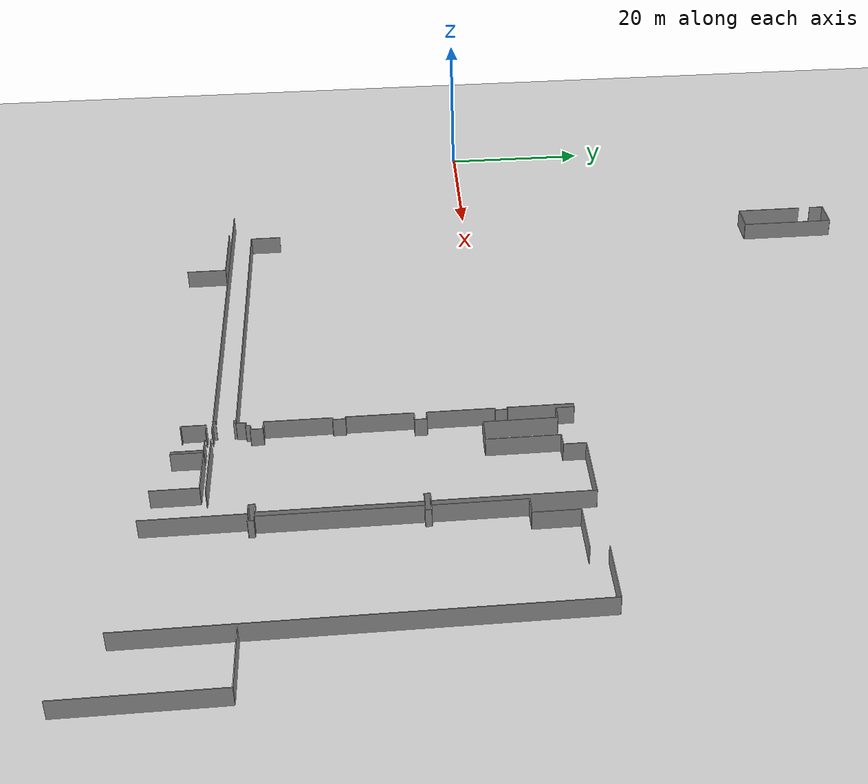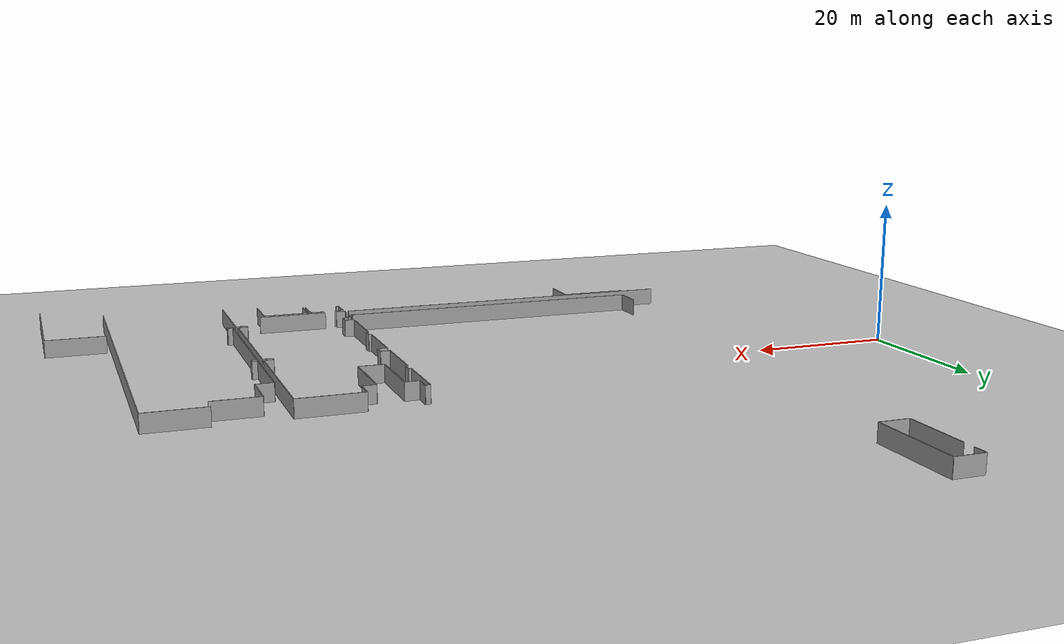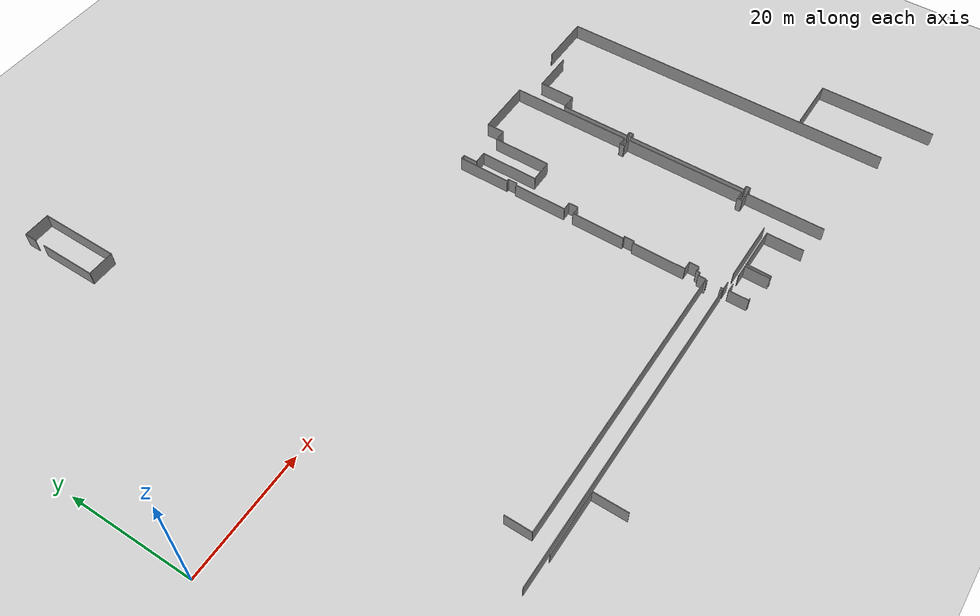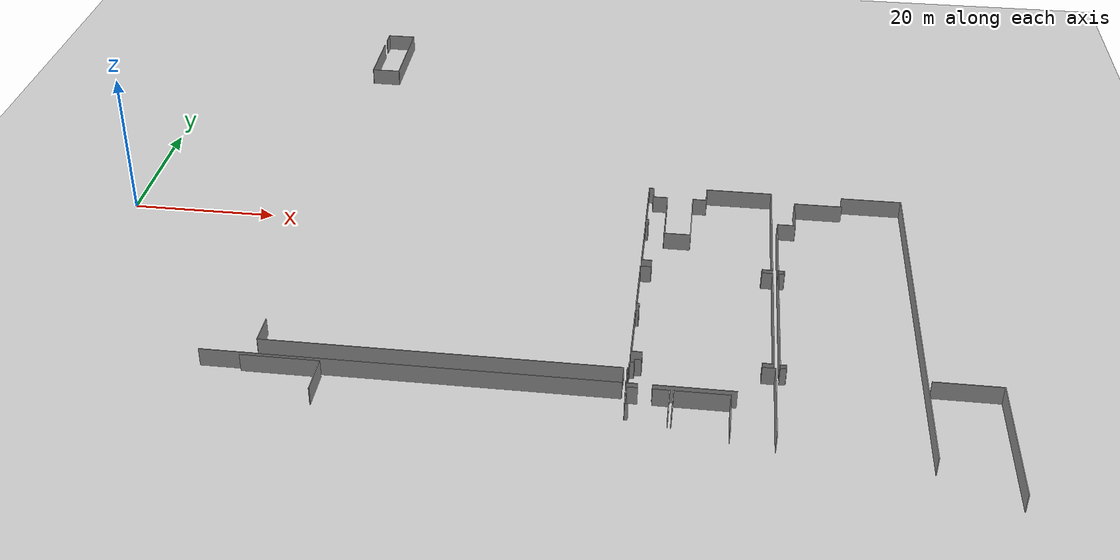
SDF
<sdf version="1.6">
 <world name="default">
  <model name="ground_plane">
   <static>1</static>
   <link name="link">
    <collision name="collision">
     <geometry><plane><normal>0 0 1</normal><size>100 100</size></plane></geometry>
     <surface><friction><ode><mu>100</mu><mu2>50</mu2></ode></friction></surface>
    </collision>
    <visual name="visual">
     <cast_shadows>0</cast_shadows>
     <geometry><plane><normal>0 0 1</normal><size>100 100</size></plane></geometry>
     <material>
      <script><uri>file://media/materials/scripts/gazebo.material</uri><name>Gazebo/Grey</name></script>
     </material>
    </visual>
   </link>
  </model>
  <model name="0510035518_A_40_1_101">
   <static>1</static>
   <link name="Wall_85">
    <collision name="Wall_85_Collision">
     <geometry><box><size>9.18767862814 0.1 2.5</size></box></geometry>
     <pose>4.59383931407 0 1.25 0 0 0</pose>
    </collision>
    <visual name="Wall_85_Visual">
     <pose>4.59383931407 0 1.25 0 0 0</pose>
     <geometry><box><size>9.18767862814 0.1 2.5</size></box></geometry>
     <material>
      <script><uri>file://media/materials/scripts/gazebo.material</uri><name>Gazebo/Grey</name></script>
      <ambient>1 1 1 1</ambient>
     </material>
    </visual>
    <pose>142.437853287 -27.0315655764 0 0 0 1.57079632679</pose>
   </link>
   <link name="Wall_86">
    <collision name="Wall_86_Collision">
     <geometry><box><size>1.98971101937 0.1 2.5</size></box></geometry>
     <pose>0.994855509686 0 1.25 0 0 0</pose>
    </collision>
    <visual name="Wall_86_Visual">
     <pose>0.994855509686 0 1.25 0 0 0</pose>
     <geometry><box><size>1.98971101937 0.1 2.5</size></box></geometry>
     <material>
      <script><uri>file://media/materials/scripts/gazebo.material</uri><name>Gazebo/Grey</name></script>
      <ambient>1 1 1 1</ambient>
     </material>
    </visual>
    <pose>142.437853287 -16.1920609717 0 0 0 1.57079632679</pose>
   </link>
   <link name="Wall_87">
    <collision name="Wall_87_Collision">
     <geometry><box><size>4.20679580819 0.1 2.5</size></box></geometry>
     <pose>2.1033979041 0 1.25 0 0 0</pose>
    </collision>
    <visual name="Wall_87_Visual">
     <pose>2.1033979041 0 1.25 0 0 0</pose>
     <geometry><box><size>4.20679580819 0.1 2.5</size></box></geometry>
     <material>
      <script><uri>file://media/materials/scripts/gazebo.material</uri><name>Gazebo/Grey</name></script>
      <ambient>1 1 1 1</ambient>
     </material>
    </visual>
    <pose>142.437853287 -14.2023499524 0 0 0 0.0</pose>
   </link>
   <link name="Wall_88">
    <collision name="Wall_88_Collision">
     <geometry><box><size>12.8467449984 0.1 2.5</size></box></geometry>
     <pose>6.42337249921 0 1.25 0 0 0</pose>
    </collision>
    <visual name="Wall_88_Visual">
     <pose>6.42337249921 0 1.25 0 0 0</pose>
     <geometry><box><size>12.8467449984 0.1 2.5</size></box></geometry>
     <material>
      <script><uri>file://media/materials/scripts/gazebo.material</uri><name>Gazebo/Grey</name></script>
      <ambient>1 1 1 1</ambient>
     </material>
    </visual>
    <pose>146.644649095 -14.2023499524 0 0 0 -1.57079632679</pose>
   </link>
   <link name="Wall_89">
    <collision name="Wall_89_Collision">
     <geometry><box><size>4.20683232977 0.1 2.5</size></box></geometry>
     <pose>2.10341616488 0 1.25 0 0 0</pose>
    </collision>
    <visual name="Wall_89_Visual">
     <pose>2.10341616488 0 1.25 0 0 0</pose>
     <geometry><box><size>4.20683232977 0.1 2.5</size></box></geometry>
     <material>
      <script><uri>file://media/materials/scripts/gazebo.material</uri><name>Gazebo/Grey</name></script>
      <ambient>1 1 1 1</ambient>
     </material>
    </visual>
    <pose>146.644649095 -27.0490949508 0 0 0 3.13742575941</pose>
   </link>
   <link name="Wall_271">
    <collision name="Wall_271_Collision">
     <geometry><box><size>9.96532232455 0.1 2.5</size></box></geometry>
     <pose>4.98266116227 0 1.25 0 0 0</pose>
    </collision>
    <visual name="Wall_271_Visual">
     <pose>4.98266116227 0 1.25 0 0 0</pose>
     <geometry><box><size>9.96532232455 0.1 2.5</size></box></geometry>
     <material>
      <script><uri>file://media/materials/scripts/gazebo.material</uri><name>Gazebo/Grey</name></script>
      <ambient>1 1 1 1</ambient>
     </material>
    </visual>
    <pose>142.362654811 -103.447951731 0 0 0 0.0</pose>
   </link>
   <link name="Wall_272">
    <collision name="Wall_272_Collision">
     <geometry><box><size>5.31140044459 0.1 2.5</size></box></geometry>
     <pose>2.65570022229 0 1.25 0 0 0</pose>
    </collision>
    <visual name="Wall_272_Visual">
     <pose>2.65570022229 0 1.25 0 0 0</pose>
     <geometry><box><size>5.31140044459 0.1 2.5</size></box></geometry>
     <material>
      <script><uri>file://media/materials/scripts/gazebo.material</uri><name>Gazebo/Grey</name></script>
      <ambient>1 1 1 1</ambient>
     </material>
    </visual>
    <pose>152.327977136 -103.447951731 0 0 0 -1.57079632679</pose>
   </link>
   <link name="Wall_325">
    <collision name="Wall_325_Collision">
     <geometry><box><size>0.418672594474 0.1 2.5</size></box></geometry>
     <pose>0.209336297237 0 1.25 0 0 0</pose>
    </collision>
    <visual name="Wall_325_Visual">
     <pose>0.209336297237 0 1.25 0 0 0</pose>
     <geometry><box><size>0.418672594474 0.1 2.5</size></box></geometry>
     <material>
      <script><uri>file://media/materials/scripts/gazebo.material</uri><name>Gazebo/Grey</name></script>
      <ambient>1 1 1 1</ambient>
     </material>
    </visual>
    <pose>189.804509368 -106.838996507 0 0 0 3.14159265359</pose>
   </link>
   <link name="Wall_326">
    <collision name="Wall_326_Collision">
     <geometry><box><size>3.08796443315 0.1 2.5</size></box></geometry>
     <pose>1.54398221658 0 1.25 0 0 0</pose>
    </collision>
    <visual name="Wall_326_Visual">
     <pose>1.54398221658 0 1.25 0 0 0</pose>
     <geometry><box><size>3.08796443315 0.1 2.5</size></box></geometry>
     <material>
      <script><uri>file://media/materials/scripts/gazebo.material</uri><name>Gazebo/Grey</name></script>
      <ambient>1 1 1 1</ambient>
     </material>
    </visual>
    <pose>189.385836774 -106.838996507 0 0 0 1.57079632679</pose>
   </link>
   <link name="Wall_327">
    <collision name="Wall_327_Collision">
     <geometry><box><size>1.32511908542 0.1 2.5</size></box></geometry>
     <pose>0.662559542712 0 1.25 0 0 0</pose>
    </collision>
    <visual name="Wall_327_Visual">
     <pose>0.662559542712 0 1.25 0 0 0</pose>
     <geometry><box><size>1.32511908542 0.1 2.5</size></box></geometry>
     <material>
      <script><uri>file://media/materials/scripts/gazebo.material</uri><name>Gazebo/Grey</name></script>
      <ambient>1 1 1 1</ambient>
     </material>
    </visual>
    <pose>189.385836774 -103.751032074 0 0 0 0.0</pose>
   </link>
   <link name="Wall_328">
    <collision name="Wall_328_Collision">
     <geometry><box><size>2.01333756748 0.1 2.5</size></box></geometry>
     <pose>1.00666878374 0 1.25 0 0 0</pose>
    </collision>
    <visual name="Wall_328_Visual">
     <pose>1.00666878374 0 1.25 0 0 0</pose>
     <geometry><box><size>2.01333756748 0.1 2.5</size></box></geometry>
     <material>
      <script><uri>file://media/materials/scripts/gazebo.material</uri><name>Gazebo/Grey</name></script>
      <ambient>1 1 1 1</ambient>
     </material>
    </visual>
    <pose>192.436710067 -103.751032074 0 0 0 0.0</pose>
   </link>
   <link name="Wall_329">
    <collision name="Wall_329_Collision">
     <geometry><box><size>3.90346141632 0.1 2.5</size></box></geometry>
     <pose>1.95173070816 0 1.25 0 0 0</pose>
    </collision>
    <visual name="Wall_329_Visual">
     <pose>1.95173070816 0 1.25 0 0 0</pose>
     <geometry><box><size>3.90346141632 0.1 2.5</size></box></geometry>
     <material>
      <script><uri>file://media/materials/scripts/gazebo.material</uri><name>Gazebo/Grey</name></script>
      <ambient>1 1 1 1</ambient>
     </material>
    </visual>
    <pose>194.450047634 -103.751032074 0 0 0 -1.57079632679</pose>
   </link>
   <link name="Wall_335">
    <collision name="Wall_335_Collision">
     <geometry><box><size>6.73077167355 0.1 2.5</size></box></geometry>
     <pose>3.36538583677 0 1.25 0 0 0</pose>
    </collision>
    <visual name="Wall_335_Visual">
     <pose>3.36538583677 0 1.25 0 0 0</pose>
     <geometry><box><size>6.73077167355 0.1 2.5</size></box></geometry>
     <material>
      <script><uri>file://media/materials/scripts/gazebo.material</uri><name>Gazebo/Grey</name></script>
      <ambient>1 1 1 1</ambient>
     </material>
    </visual>
    <pose>194.906827564 -103.747475389 0 0 0 0.0</pose>
   </link>
   <link name="Wall_336">
    <collision name="Wall_336_Collision">
     <geometry><box><size>5.81695776437 0.1 2.5</size></box></geometry>
     <pose>2.90847888218 0 1.25 0 0 0</pose>
    </collision>
    <visual name="Wall_336_Visual">
     <pose>2.90847888218 0 1.25 0 0 0</pose>
     <geometry><box><size>5.81695776437 0.1 2.5</size></box></geometry>
     <material>
      <script><uri>file://media/materials/scripts/gazebo.material</uri><name>Gazebo/Grey</name></script>
      <ambient>1 1 1 1</ambient>
     </material>
    </visual>
    <pose>201.637599238 -103.747475389 0 0 0 -1.57079632679</pose>
   </link>
   <link name="Wall_342">
    <collision name="Wall_342_Collision">
     <geometry><box><size>3.96048375785 0.1 2.5</size></box></geometry>
     <pose>1.98024187893 0 1.25 0 0 0</pose>
    </collision>
    <visual name="Wall_342_Visual">
     <pose>1.98024187893 0 1.25 0 0 0</pose>
     <geometry><box><size>3.96048375785 0.1 2.5</size></box></geometry>
     <material>
      <script><uri>file://media/materials/scripts/gazebo.material</uri><name>Gazebo/Grey</name></script>
      <ambient>1 1 1 1</ambient>
     </material>
    </visual>
    <pose>194.876595745 -107.70784376 0 0 0 1.56316288728</pose>
   </link>
   <link name="Wall_353">
    <collision name="Wall_353_Collision">
     <geometry><box><size>4.1493807558 0.1 2.5</size></box></geometry>
     <pose>2.0746903779 0 1.25 0 0 0</pose>
    </collision>
    <visual name="Wall_353_Visual">
     <pose>2.0746903779 0 1.25 0 0 0</pose>
     <geometry><box><size>4.1493807558 0.1 2.5</size></box></geometry>
     <material>
      <script><uri>file://media/materials/scripts/gazebo.material</uri><name>Gazebo/Grey</name></script>
      <ambient>1 1 1 1</ambient>
     </material>
    </visual>
    <pose>143.656017783 -96.0241346459 0 0 0 -1.57079632679</pose>
   </link>
   <link name="Wall_354">
    <collision name="Wall_354_Collision">
     <geometry><box><size>45.1414417275 0.1 2.5</size></box></geometry>
     <pose>22.5707208638 0 1.25 0 0 0</pose>
    </collision>
    <visual name="Wall_354_Visual">
     <pose>22.5707208638 0 1.25 0 0 0</pose>
     <geometry><box><size>45.1414417275 0.1 2.5</size></box></geometry>
     <material>
      <script><uri>file://media/materials/scripts/gazebo.material</uri><name>Gazebo/Grey</name></script>
      <ambient>1 1 1 1</ambient>
     </material>
    </visual>
    <pose>143.656017783 -100.173515402 0 0 0 0.0</pose>
   </link>
   <link name="Wall_355">
    <collision name="Wall_355_Collision">
     <geometry><box><size>0.345760558908 0.1 2.5</size></box></geometry>
     <pose>0.172880279454 0 1.25 0 0 0</pose>
    </collision>
    <visual name="Wall_355_Visual">
     <pose>0.172880279454 0 1.25 0 0 0</pose>
     <geometry><box><size>0.345760558908 0.1 2.5</size></box></geometry>
     <material>
      <script><uri>file://media/materials/scripts/gazebo.material</uri><name>Gazebo/Grey</name></script>
      <ambient>1 1 1 1</ambient>
     </material>
    </visual>
    <pose>188.797459511 -100.173515402 0 0 0 -1.57079632679</pose>
   </link>
   <link name="Wall_356">
    <collision name="Wall_356_Collision">
     <geometry><box><size>0.360749444268 0.1 2.5</size></box></geometry>
     <pose>0.180374722134 0 1.25 0 0 0</pose>
    </collision>
    <visual name="Wall_356_Visual">
     <pose>0.180374722134 0 1.25 0 0 0</pose>
     <geometry><box><size>0.360749444268 0.1 2.5</size></box></geometry>
     <material>
      <script><uri>file://media/materials/scripts/gazebo.material</uri><name>Gazebo/Grey</name></script>
      <ambient>1 1 1 1</ambient>
     </material>
    </visual>
    <pose>188.797459511 -102.626611623 0 0 0 -1.57079632679</pose>
   </link>
   <link name="Wall_357">
    <collision name="Wall_357_Collision">
     <geometry><box><size>51.6933629724 0.1 2.5</size></box></geometry>
     <pose>25.8466814862 0 1.25 0 0 0</pose>
    </collision>
    <visual name="Wall_357_Visual">
     <pose>25.8466814862 0 1.25 0 0 0</pose>
     <geometry><box><size>51.6933629724 0.1 2.5</size></box></geometry>
     <material>
      <script><uri>file://media/materials/scripts/gazebo.material</uri><name>Gazebo/Grey</name></script>
      <ambient>1 1 1 1</ambient>
     </material>
    </visual>
    <pose>188.797459511 -102.987361067 0 0 0 3.14159265359</pose>
   </link>
   <link name="Wall_364">
    <collision name="Wall_364_Collision">
     <geometry><box><size>8.46186090822 0.1 2.5</size></box></geometry>
     <pose>4.23093045411 0 1.25 0 0 0</pose>
    </collision>
    <visual name="Wall_364_Visual">
     <pose>4.23093045411 0 1.25 0 0 0</pose>
     <geometry><box><size>8.46186090822 0.1 2.5</size></box></geometry>
     <material>
      <script><uri>file://media/materials/scripts/gazebo.material</uri><name>Gazebo/Grey</name></script>
      <ambient>1 1 1 1</ambient>
     </material>
    </visual>
    <pose>189.39828517 -96.8373451889 0 0 0 1.57079632679</pose>
   </link>
   <link name="Wall_365">
    <collision name="Wall_365_Collision">
     <geometry><box><size>0.382089552239 0.1 2.5</size></box></geometry>
     <pose>0.191044776119 0 1.25 0 0 0</pose>
    </collision>
    <visual name="Wall_365_Visual">
     <pose>0.191044776119 0 1.25 0 0 0</pose>
     <geometry><box><size>0.382089552239 0.1 2.5</size></box></geometry>
     <material>
      <script><uri>file://media/materials/scripts/gazebo.material</uri><name>Gazebo/Grey</name></script>
      <ambient>1 1 1 1</ambient>
     </material>
    </visual>
    <pose>189.39828517 -88.3754842807 0 0 0 0.0</pose>
   </link>
   <link name="Wall_366">
    <collision name="Wall_366_Collision">
     <geometry><box><size>1.56341695776 0.1 2.5</size></box></geometry>
     <pose>0.781708478882 0 1.25 0 0 0</pose>
    </collision>
    <visual name="Wall_366_Visual">
     <pose>0.781708478882 0 1.25 0 0 0</pose>
     <geometry><box><size>1.56341695776 0.1 2.5</size></box></geometry>
     <material>
      <script><uri>file://media/materials/scripts/gazebo.material</uri><name>Gazebo/Grey</name></script>
      <ambient>1 1 1 1</ambient>
     </material>
    </visual>
    <pose>189.780374722 -88.3754842807 0 0 0 1.57079632679</pose>
   </link>
   <link name="Wall_367">
    <collision name="Wall_367_Collision">
     <geometry><box><size>0.390981263893 0.1 2.5</size></box></geometry>
     <pose>0.195490631947 0 1.25 0 0 0</pose>
    </collision>
    <visual name="Wall_367_Visual">
     <pose>0.195490631947 0 1.25 0 0 0</pose>
     <geometry><box><size>0.390981263893 0.1 2.5</size></box></geometry>
     <material>
      <script><uri>file://media/materials/scripts/gazebo.material</uri><name>Gazebo/Grey</name></script>
      <ambient>1 1 1 1</ambient>
     </material>
    </visual>
    <pose>189.780374722 -86.812067323 0 0 0 3.14159265359</pose>
   </link>
   <link name="Wall_368">
    <collision name="Wall_368_Collision">
     <geometry><box><size>8.4486503652 0.1 2.5</size></box></geometry>
     <pose>4.2243251826 0 1.25 0 0 0</pose>
    </collision>
    <visual name="Wall_368_Visual">
     <pose>4.2243251826 0 1.25 0 0 0</pose>
     <geometry><box><size>8.4486503652 0.1 2.5</size></box></geometry>
     <material>
      <script><uri>file://media/materials/scripts/gazebo.material</uri><name>Gazebo/Grey</name></script>
      <ambient>1 1 1 1</ambient>
     </material>
    </visual>
    <pose>189.389393458 -86.812067323 0 0 0 1.57079632679</pose>
   </link>
   <link name="Wall_369">
    <collision name="Wall_369_Collision">
     <geometry><box><size>1.3868529692 0.1 2.5</size></box></geometry>
     <pose>0.693426484598 0 1.25 0 0 0</pose>
    </collision>
    <visual name="Wall_369_Visual">
     <pose>0.693426484598 0 1.25 0 0 0</pose>
     <geometry><box><size>1.3868529692 0.1 2.5</size></box></geometry>
     <material>
      <script><uri>file://media/materials/scripts/gazebo.material</uri><name>Gazebo/Grey</name></script>
      <ambient>1 1 1 1</ambient>
     </material>
    </visual>
    <pose>189.389393458 -78.3634169578 0 0 0 0.0</pose>
   </link>
   <link name="Wall_370">
    <collision name="Wall_370_Collision">
     <geometry><box><size>1.52251508415 0.1 2.5</size></box></geometry>
     <pose>0.761257542077 0 1.25 0 0 0</pose>
    </collision>
    <visual name="Wall_370_Visual">
     <pose>0.761257542077 0 1.25 0 0 0</pose>
     <geometry><box><size>1.52251508415 0.1 2.5</size></box></geometry>
     <material>
      <script><uri>file://media/materials/scripts/gazebo.material</uri><name>Gazebo/Grey</name></script>
      <ambient>1 1 1 1</ambient>
     </material>
    </visual>
    <pose>190.776246427 -78.3634169578 0 0 0 1.57079632679</pose>
   </link>
   <link name="Wall_371">
    <collision name="Wall_371_Collision">
     <geometry><box><size>1.35890758971 0.1 2.5</size></box></geometry>
     <pose>0.679453794856 0 1.25 0 0 0</pose>
    </collision>
    <visual name="Wall_371_Visual">
     <pose>0.679453794856 0 1.25 0 0 0</pose>
     <geometry><box><size>1.35890758971 0.1 2.5</size></box></geometry>
     <material>
      <script><uri>file://media/materials/scripts/gazebo.material</uri><name>Gazebo/Grey</name></script>
      <ambient>1 1 1 1</ambient>
     </material>
    </visual>
    <pose>190.776246427 -76.8409018736 0 0 0 3.14159265359</pose>
   </link>
   <link name="Wall_372">
    <collision name="Wall_372_Collision">
     <geometry><box><size>8.49869799936 0.1 2.5</size></box></geometry>
     <pose>4.24934899968 0 1.25 0 0 0</pose>
    </collision>
    <visual name="Wall_372_Visual">
     <pose>4.24934899968 0 1.25 0 0 0</pose>
     <geometry><box><size>8.49869799936 0.1 2.5</size></box></geometry>
     <material>
      <script><uri>file://media/materials/scripts/gazebo.material</uri><name>Gazebo/Grey</name></script>
      <ambient>1 1 1 1</ambient>
     </material>
    </visual>
    <pose>189.417338838 -76.8409018736 0 0 0 1.57079632679</pose>
   </link>
   <link name="Wall_373">
    <collision name="Wall_373_Collision">
     <geometry><box><size>0.353636074944 0.1 2.5</size></box></geometry>
     <pose>0.176818037472 0 1.25 0 0 0</pose>
    </collision>
    <visual name="Wall_373_Visual">
     <pose>0.176818037472 0 1.25 0 0 0</pose>
     <geometry><box><size>0.353636074944 0.1 2.5</size></box></geometry>
     <material>
      <script><uri>file://media/materials/scripts/gazebo.material</uri><name>Gazebo/Grey</name></script>
      <ambient>1 1 1 1</ambient>
     </material>
    </visual>
    <pose>189.417338838 -68.3422038742 0 0 0 0.0</pose>
   </link>
   <link name="Wall_374">
    <collision name="Wall_374_Collision">
     <geometry><box><size>1.50498570975 0.1 2.5</size></box></geometry>
     <pose>0.752492854875 0 1.25 0 0 0</pose>
    </collision>
    <visual name="Wall_374_Visual">
     <pose>0.752492854875 0 1.25 0 0 0</pose>
     <geometry><box><size>1.50498570975 0.1 2.5</size></box></geometry>
     <material>
      <script><uri>file://media/materials/scripts/gazebo.material</uri><name>Gazebo/Grey</name></script>
      <ambient>1 1 1 1</ambient>
     </material>
    </visual>
    <pose>189.770974913 -68.3422038742 0 0 0 1.57079632679</pose>
   </link>
   <link name="Wall_375">
    <collision name="Wall_375_Collision">
     <geometry><box><size>0.378786916481 0.1 2.5</size></box></geometry>
     <pose>0.189393458241 0 1.25 0 0 0</pose>
    </collision>
    <visual name="Wall_375_Visual">
     <pose>0.189393458241 0 1.25 0 0 0</pose>
     <geometry><box><size>0.378786916481 0.1 2.5</size></box></geometry>
     <material>
      <script><uri>file://media/materials/scripts/gazebo.material</uri><name>Gazebo/Grey</name></script>
      <ambient>1 1 1 1</ambient>
     </material>
    </visual>
    <pose>189.770974913 -66.8372181645 0 0 0 3.14159265359</pose>
   </link>
   <link name="Wall_376">
    <collision name="Wall_376_Collision">
     <geometry><box><size>8.30181009844 0.1 2.5</size></box></geometry>
     <pose>4.15090504922 0 1.25 0 0 0</pose>
    </collision>
    <visual name="Wall_376_Visual">
     <pose>4.15090504922 0 1.25 0 0 0</pose>
     <geometry><box><size>8.30181009844 0.1 2.5</size></box></geometry>
     <material>
      <script><uri>file://media/materials/scripts/gazebo.material</uri><name>Gazebo/Grey</name></script>
      <ambient>1 1 1 1</ambient>
     </material>
    </visual>
    <pose>189.392187996 -66.8372181645 0 0 0 1.57079632679</pose>
   </link>
   <link name="Wall_377">
    <collision name="Wall_377_Collision">
     <geometry><box><size>0.678056525881 0.1 2.5</size></box></geometry>
     <pose>0.339028262941 0 1.25 0 0 0</pose>
    </collision>
    <visual name="Wall_377_Visual">
     <pose>0.339028262941 0 1.25 0 0 0</pose>
     <geometry><box><size>0.678056525881 0.1 2.5</size></box></geometry>
     <material>
      <script><uri>file://media/materials/scripts/gazebo.material</uri><name>Gazebo/Grey</name></script>
      <ambient>1 1 1 1</ambient>
     </material>
    </visual>
    <pose>189.392187996 -58.5354080661 0 0 0 0.0</pose>
   </link>
   <link name="Wall_378">
    <collision name="Wall_378_Collision">
     <geometry><box><size>2.27958081931 0.1 2.5</size></box></geometry>
     <pose>1.13979040965 0 1.25 0 0 0</pose>
    </collision>
    <visual name="Wall_378_Visual">
     <pose>1.13979040965 0 1.25 0 0 0</pose>
     <geometry><box><size>2.27958081931 0.1 2.5</size></box></geometry>
     <material>
      <script><uri>file://media/materials/scripts/gazebo.material</uri><name>Gazebo/Grey</name></script>
      <ambient>1 1 1 1</ambient>
     </material>
    </visual>
    <pose>190.070244522 -58.5354080661 0 0 0 -1.57079632679</pose>
   </link>
   <link name="Wall_379">
    <collision name="Wall_379_Collision">
     <geometry><box><size>2.00317561131 0.1 2.5</size></box></geometry>
     <pose>1.00158780565 0 1.25 0 0 0</pose>
    </collision>
    <visual name="Wall_379_Visual">
     <pose>1.00158780565 0 1.25 0 0 0</pose>
     <geometry><box><size>2.00317561131 0.1 2.5</size></box></geometry>
     <material>
      <script><uri>file://media/materials/scripts/gazebo.material</uri><name>Gazebo/Grey</name></script>
      <ambient>1 1 1 1</ambient>
     </material>
    </visual>
    <pose>190.070244522 -60.8149888854 0 0 0 0.0</pose>
   </link>
   <link name="Wall_380">
    <collision name="Wall_380_Collision">
     <geometry><box><size>9.22908859956 0.1 2.5</size></box></geometry>
     <pose>4.61454429978 0 1.25 0 0 0</pose>
    </collision>
    <visual name="Wall_380_Visual">
     <pose>4.61454429978 0 1.25 0 0 0</pose>
     <geometry><box><size>9.22908859956 0.1 2.5</size></box></geometry>
     <material>
      <script><uri>file://media/materials/scripts/gazebo.material</uri><name>Gazebo/Grey</name></script>
      <ambient>1 1 1 1</ambient>
     </material>
    </visual>
    <pose>192.073420133 -60.8149888854 0 0 0 -1.57079632679</pose>
   </link>
   <link name="Wall_381">
    <collision name="Wall_381_Collision">
     <geometry><box><size>3.57014925373 0.1 2.5</size></box></geometry>
     <pose>1.78507462687 0 1.25 0 0 0</pose>
    </collision>
    <visual name="Wall_381_Visual">
     <pose>1.78507462687 0 1.25 0 0 0</pose>
     <geometry><box><size>3.57014925373 0.1 2.5</size></box></geometry>
     <material>
      <script><uri>file://media/materials/scripts/gazebo.material</uri><name>Gazebo/Grey</name></script>
      <ambient>1 1 1 1</ambient>
     </material>
    </visual>
    <pose>192.073420133 -70.0440774849 0 0 0 0.0</pose>
   </link>
   <link name="Wall_382">
    <collision name="Wall_382_Collision">
     <geometry><box><size>9.23518577326 0.1 2.5</size></box></geometry>
     <pose>4.61759288663 0 1.25 0 0 0</pose>
    </collision>
    <visual name="Wall_382_Visual">
     <pose>4.61759288663 0 1.25 0 0 0</pose>
     <geometry><box><size>9.23518577326 0.1 2.5</size></box></geometry>
     <material>
      <script><uri>file://media/materials/scripts/gazebo.material</uri><name>Gazebo/Grey</name></script>
      <ambient>1 1 1 1</ambient>
     </material>
    </visual>
    <pose>195.643569387 -70.0440774849 0 0 0 1.57079632679</pose>
   </link>
   <link name="Wall_383">
    <collision name="Wall_383_Collision">
     <geometry><box><size>1.90181009844 0.1 2.5</size></box></geometry>
     <pose>0.950905049222 0 1.25 0 0 0</pose>
    </collision>
    <visual name="Wall_383_Visual">
     <pose>0.950905049222 0 1.25 0 0 0</pose>
     <geometry><box><size>1.90181009844 0.1 2.5</size></box></geometry>
     <material>
      <script><uri>file://media/materials/scripts/gazebo.material</uri><name>Gazebo/Grey</name></script>
      <ambient>1 1 1 1</ambient>
     </material>
    </visual>
    <pose>195.643569387 -60.8088917117 0 0 0 0.0</pose>
   </link>
   <link name="Wall_384">
    <collision name="Wall_384_Collision">
     <geometry><box><size>2.80444585583 0.1 2.5</size></box></geometry>
     <pose>1.40222292791 0 1.25 0 0 0</pose>
    </collision>
    <visual name="Wall_384_Visual">
     <pose>1.40222292791 0 1.25 0 0 0</pose>
     <geometry><box><size>2.80444585583 0.1 2.5</size></box></geometry>
     <material>
      <script><uri>file://media/materials/scripts/gazebo.material</uri><name>Gazebo/Grey</name></script>
      <ambient>1 1 1 1</ambient>
     </material>
    </visual>
    <pose>197.545379486 -60.8088917117 0 0 0 1.57079632679</pose>
   </link>
   <link name="Wall_385">
    <collision name="Wall_385_Collision">
     <geometry><box><size>9.0875833598 0.1 2.5</size></box></geometry>
     <pose>4.5437916799 0 1.25 0 0 0</pose>
    </collision>
    <visual name="Wall_385_Visual">
     <pose>4.5437916799 0 1.25 0 0 0</pose>
     <geometry><box><size>9.0875833598 0.1 2.5</size></box></geometry>
     <material>
      <script><uri>file://media/materials/scripts/gazebo.material</uri><name>Gazebo/Grey</name></script>
      <ambient>1 1 1 1</ambient>
     </material>
    </visual>
    <pose>197.545379486 -58.0044458558 0 0 0 0.0</pose>
   </link>
   <link name="Wall_386">
    <collision name="Wall_386_Collision">
     <geometry><box><size>19.1890758971 0.1 2.5</size></box></geometry>
     <pose>9.59453794856 0 1.25 0 0 0</pose>
    </collision>
    <visual name="Wall_386_Visual">
     <pose>9.59453794856 0 1.25 0 0 0</pose>
     <geometry><box><size>19.1890758971 0.1 2.5</size></box></geometry>
     <material>
      <script><uri>file://media/materials/scripts/gazebo.material</uri><name>Gazebo/Grey</name></script>
      <ambient>1 1 1 1</ambient>
     </material>
    </visual>
    <pose>206.632962845 -58.0044458558 0 0 0 -1.57079632679</pose>
   </link>
   <link name="Wall_387">
    <collision name="Wall_387_Collision">
     <geometry><box><size>1.35560495395 0.1 2.5</size></box></geometry>
     <pose>0.677802476977 0 1.25 0 0 0</pose>
    </collision>
    <visual name="Wall_387_Visual">
     <pose>0.677802476977 0 1.25 0 0 0</pose>
     <geometry><box><size>1.35560495395 0.1 2.5</size></box></geometry>
     <material>
      <script><uri>file://media/materials/scripts/gazebo.material</uri><name>Gazebo/Grey</name></script>
      <ambient>1 1 1 1</ambient>
     </material>
    </visual>
    <pose>206.632962845 -77.1935217529 0 0 0 3.14159265359</pose>
   </link>
   <link name="Wall_388">
    <collision name="Wall_388_Collision">
     <geometry><box><size>0.750968561448 0.1 2.5</size></box></geometry>
     <pose>0.375484280724 0 1.25 0 0 0</pose>
    </collision>
    <visual name="Wall_388_Visual">
     <pose>0.375484280724 0 1.25 0 0 0</pose>
     <geometry><box><size>0.750968561448 0.1 2.5</size></box></geometry>
     <material>
      <script><uri>file://media/materials/scripts/gazebo.material</uri><name>Gazebo/Grey</name></script>
      <ambient>1 1 1 1</ambient>
     </material>
    </visual>
    <pose>205.277357891 -77.1935217529 0 0 0 -1.57079632679</pose>
   </link>
   <link name="Wall_389">
    <collision name="Wall_389_Collision">
     <geometry><box><size>1.39371228962 0.1 2.5</size></box></geometry>
     <pose>0.696856144808 0 1.25 0 0 0</pose>
    </collision>
    <visual name="Wall_389_Visual">
     <pose>0.696856144808 0 1.25 0 0 0</pose>
     <geometry><box><size>1.39371228962 0.1 2.5</size></box></geometry>
     <material>
      <script><uri>file://media/materials/scripts/gazebo.material</uri><name>Gazebo/Grey</name></script>
      <ambient>1 1 1 1</ambient>
     </material>
    </visual>
    <pose>205.277357891 -77.9444903144 0 0 0 0.0</pose>
   </link>
   <link name="Wall_390">
    <collision name="Wall_390_Collision">
     <geometry><box><size>19.2594474436 0.1 2.5</size></box></geometry>
     <pose>9.62972372182 0 1.25 0 0 0</pose>
    </collision>
    <visual name="Wall_390_Visual">
     <pose>9.62972372182 0 1.25 0 0 0</pose>
     <geometry><box><size>19.2594474436 0.1 2.5</size></box></geometry>
     <material>
      <script><uri>file://media/materials/scripts/gazebo.material</uri><name>Gazebo/Grey</name></script>
      <ambient>1 1 1 1</ambient>
     </material>
    </visual>
    <pose>206.671070181 -77.9444903144 0 0 0 -1.57079632679</pose>
   </link>
   <link name="Wall_391">
    <collision name="Wall_391_Collision">
     <geometry><box><size>1.41378215306 0.1 2.5</size></box></geometry>
     <pose>0.706891076532 0 1.25 0 0 0</pose>
    </collision>
    <visual name="Wall_391_Visual">
     <pose>0.706891076532 0 1.25 0 0 0</pose>
     <geometry><box><size>1.41378215306 0.1 2.5</size></box></geometry>
     <material>
      <script><uri>file://media/materials/scripts/gazebo.material</uri><name>Gazebo/Grey</name></script>
      <ambient>1 1 1 1</ambient>
     </material>
    </visual>
    <pose>206.671070181 -97.203937758 0 0 0 3.14159265359</pose>
   </link>
   <link name="Wall_392">
    <collision name="Wall_392_Collision">
     <geometry><box><size>0.796951413147 0.1 2.5</size></box></geometry>
     <pose>0.398475706574 0 1.25 0 0 0</pose>
    </collision>
    <visual name="Wall_392_Visual">
     <pose>0.398475706574 0 1.25 0 0 0</pose>
     <geometry><box><size>0.796951413147 0.1 2.5</size></box></geometry>
     <material>
      <script><uri>file://media/materials/scripts/gazebo.material</uri><name>Gazebo/Grey</name></script>
      <ambient>1 1 1 1</ambient>
     </material>
    </visual>
    <pose>205.257288028 -97.203937758 0 0 0 -1.57079632679</pose>
   </link>
   <link name="Wall_393">
    <collision name="Wall_393_Collision">
     <geometry><box><size>1.62235630359 0.1 2.5</size></box></geometry>
     <pose>0.811178151794 0 1.25 0 0 0</pose>
    </collision>
    <visual name="Wall_393_Visual">
     <pose>0.811178151794 0 1.25 0 0 0</pose>
     <geometry><box><size>1.62235630359 0.1 2.5</size></box></geometry>
     <material>
      <script><uri>file://media/materials/scripts/gazebo.material</uri><name>Gazebo/Grey</name></script>
      <ambient>1 1 1 1</ambient>
     </material>
    </visual>
    <pose>205.257288028 -98.0008891712 0 0 0 0.0</pose>
   </link>
   <link name="Wall_394">
    <collision name="Wall_394_Collision">
     <geometry><box><size>12.4301047952 0.1 2.5</size></box></geometry>
     <pose>6.21505239759 0 1.25 0 0 0</pose>
    </collision>
    <visual name="Wall_394_Visual">
     <pose>6.21505239759 0 1.25 0 0 0</pose>
     <geometry><box><size>12.4301047952 0.1 2.5</size></box></geometry>
     <material>
      <script><uri>file://media/materials/scripts/gazebo.material</uri><name>Gazebo/Grey</name></script>
      <ambient>1 1 1 1</ambient>
     </material>
    </visual>
    <pose>206.879644332 -98.0008891712 0 0 0 -1.57079632679</pose>
   </link>
   <link name="Wall_398">
    <collision name="Wall_398_Collision">
     <geometry><box><size>10.0295966974 0.1 2.5</size></box></geometry>
     <pose>5.01479834868 0 1.25 0 0 0</pose>
    </collision>
    <visual name="Wall_398_Visual">
     <pose>5.01479834868 0 1.25 0 0 0</pose>
     <geometry><box><size>10.0295966974 0.1 2.5</size></box></geometry>
     <material>
      <script><uri>file://media/materials/scripts/gazebo.material</uri><name>Gazebo/Grey</name></script>
      <ambient>1 1 1 1</ambient>
     </material>
    </visual>
    <pose>202.388567799 -102.997777072 0 0 0 3.14159265359</pose>
   </link>
   <link name="Wall_399">
    <collision name="Wall_399_Collision">
     <geometry><box><size>1.40336614798 0.1 2.5</size></box></geometry>
     <pose>0.701683073992 0 1.25 0 0 0</pose>
    </collision>
    <visual name="Wall_399_Visual">
     <pose>0.701683073992 0 1.25 0 0 0</pose>
     <geometry><box><size>1.40336614798 0.1 2.5</size></box></geometry>
     <material>
      <script><uri>file://media/materials/scripts/gazebo.material</uri><name>Gazebo/Grey</name></script>
      <ambient>1 1 1 1</ambient>
     </material>
    </visual>
    <pose>190.643886948 -102.997777072 0 0 0 3.14159265359</pose>
   </link>
   <link name="Wall_400">
    <collision name="Wall_400_Collision">
     <geometry><box><size>0.431883137504 0.1 2.5</size></box></geometry>
     <pose>0.215941568752 0 1.25 0 0 0</pose>
    </collision>
    <visual name="Wall_400_Visual">
     <pose>0.215941568752 0 1.25 0 0 0</pose>
     <geometry><box><size>0.431883137504 0.1 2.5</size></box></geometry>
     <material>
      <script><uri>file://media/materials/scripts/gazebo.material</uri><name>Gazebo/Grey</name></script>
      <ambient>1 1 1 1</ambient>
     </material>
    </visual>
    <pose>189.2405208 -102.997777072 0 0 0 1.57079632679</pose>
   </link>
   <link name="Wall_401">
    <collision name="Wall_401_Collision">
     <geometry><box><size>0.341949825341 0.1 2.5</size></box></geometry>
     <pose>0.170974912671 0 1.25 0 0 0</pose>
    </collision>
    <visual name="Wall_401_Visual">
     <pose>0.170974912671 0 1.25 0 0 0</pose>
     <geometry><box><size>0.341949825341 0.1 2.5</size></box></geometry>
     <material>
      <script><uri>file://media/materials/scripts/gazebo.material</uri><name>Gazebo/Grey</name></script>
      <ambient>1 1 1 1</ambient>
     </material>
    </visual>
    <pose>189.2405208 -100.480406478 0 0 0 1.57079632679</pose>
   </link>
   <link name="Wall_402">
    <collision name="Wall_402_Collision">
     <geometry><box><size>0.143029533185 0.1 2.5</size></box></geometry>
     <pose>0.0715147665926 0 1.25 0 0 0</pose>
    </collision>
    <visual name="Wall_402_Visual">
     <pose>0.0715147665926 0 1.25 0 0 0</pose>
     <geometry><box><size>0.143029533185 0.1 2.5</size></box></geometry>
     <material>
      <script><uri>file://media/materials/scripts/gazebo.material</uri><name>Gazebo/Grey</name></script>
      <ambient>1 1 1 1</ambient>
     </material>
    </visual>
    <pose>189.2405208 -100.138456653 0 0 0 0.0</pose>
   </link>
   <link name="Wall_403">
    <collision name="Wall_403_Collision">
     <geometry><box><size>1.17650047634 0.1 2.5</size></box></geometry>
     <pose>0.588250238171 0 1.25 0 0 0</pose>
    </collision>
    <visual name="Wall_403_Visual">
     <pose>0.588250238171 0 1.25 0 0 0</pose>
     <geometry><box><size>1.17650047634 0.1 2.5</size></box></geometry>
     <material>
      <script><uri>file://media/materials/scripts/gazebo.material</uri><name>Gazebo/Grey</name></script>
      <ambient>1 1 1 1</ambient>
     </material>
    </visual>
    <pose>189.383550333 -100.138456653 0 0 0 1.57079632679</pose>
   </link>
   <link name="Wall_404">
    <collision name="Wall_404_Collision">
     <geometry><box><size>0.562718323277 0.1 2.5</size></box></geometry>
     <pose>0.281359161639 0 1.25 0 0 0</pose>
    </collision>
    <visual name="Wall_404_Visual">
     <pose>0.281359161639 0 1.25 0 0 0</pose>
     <geometry><box><size>0.562718323277 0.1 2.5</size></box></geometry>
     <material>
      <script><uri>file://media/materials/scripts/gazebo.material</uri><name>Gazebo/Grey</name></script>
      <ambient>1 1 1 1</ambient>
     </material>
    </visual>
    <pose>189.383550333 -98.9619561766 0 0 0 0.0</pose>
   </link>
   <link name="Wall_405">
    <collision name="Wall_405_Collision">
     <geometry><box><size>0.589647507145 0.1 2.5</size></box></geometry>
     <pose>0.294823753573 0 1.25 0 0 0</pose>
    </collision>
    <visual name="Wall_405_Visual">
     <pose>0.294823753573 0 1.25 0 0 0</pose>
     <geometry><box><size>0.589647507145 0.1 2.5</size></box></geometry>
     <material>
      <script><uri>file://media/materials/scripts/gazebo.material</uri><name>Gazebo/Grey</name></script>
      <ambient>1 1 1 1</ambient>
     </material>
    </visual>
    <pose>189.946268657 -98.9619561766 0 0 0 1.57079632679</pose>
   </link>
   <link name="Wall_406">
    <collision name="Wall_406_Collision">
     <geometry><box><size>0.8518259765 0.1 2.5</size></box></geometry>
     <pose>0.42591298825 0 1.25 0 0 0</pose>
    </collision>
    <visual name="Wall_406_Visual">
     <pose>0.42591298825 0 1.25 0 0 0</pose>
     <geometry><box><size>0.8518259765 0.1 2.5</size></box></geometry>
     <material>
      <script><uri>file://media/materials/scripts/gazebo.material</uri><name>Gazebo/Grey</name></script>
      <ambient>1 1 1 1</ambient>
     </material>
    </visual>
    <pose>189.946268657 -98.3723086694 0 0 0 0.0</pose>
   </link>
   <link name="Wall_407">
    <collision name="Wall_407_Collision">
     <geometry><box><size>1.53979040965 0.1 2.5</size></box></geometry>
     <pose>0.769895204827 0 1.25 0 0 0</pose>
    </collision>
    <visual name="Wall_407_Visual">
     <pose>0.769895204827 0 1.25 0 0 0</pose>
     <geometry><box><size>1.53979040965 0.1 2.5</size></box></geometry>
     <material>
      <script><uri>file://media/materials/scripts/gazebo.material</uri><name>Gazebo/Grey</name></script>
      <ambient>1 1 1 1</ambient>
     </material>
    </visual>
    <pose>190.798094633 -98.3723086694 0 0 0 1.57079632679</pose>
   </link>
   <link name="Wall_408">
    <collision name="Wall_408_Collision">
     <geometry><box><size>1.39981778559 0.1 2.5</size></box></geometry>
     <pose>0.699908892794 0 1.25 0 0 0</pose>
    </collision>
    <visual name="Wall_408_Visual">
     <pose>0.699908892794 0 1.25 0 0 0</pose>
     <geometry><box><size>1.39981778559 0.1 2.5</size></box></geometry>
     <material>
      <script><uri>file://media/materials/scripts/gazebo.material</uri><name>Gazebo/Grey</name></script>
      <ambient>1 1 1 1</ambient>
     </material>
    </visual>
    <pose>190.798094633 -96.8325182598 0 0 0 -3.1381443914</pose>
   </link>
   <link name="Wall_428">
    <collision name="Wall_428_Collision">
     <geometry><box><size>0.758081930772 0.1 2.5</size></box></geometry>
     <pose>0.379040965386 0 1.25 0 0 0</pose>
    </collision>
    <visual name="Wall_428_Visual">
     <pose>0.379040965386 0 1.25 0 0 0</pose>
     <geometry><box><size>0.758081930772 0.1 2.5</size></box></geometry>
     <material>
      <script><uri>file://media/materials/scripts/gazebo.material</uri><name>Gazebo/Grey</name></script>
      <ambient>1 1 1 1</ambient>
     </material>
    </visual>
    <pose>207.384439505 -97.9650682756 0 0 0 0.0</pose>
   </link>
   <link name="Wall_429">
    <collision name="Wall_429_Collision">
     <geometry><box><size>0.714131470308 0.1 2.5</size></box></geometry>
     <pose>0.357065735154 0 1.25 0 0 0</pose>
    </collision>
    <visual name="Wall_429_Visual">
     <pose>0.357065735154 0 1.25 0 0 0</pose>
     <geometry><box><size>0.714131470308 0.1 2.5</size></box></geometry>
     <material>
      <script><uri>file://media/materials/scripts/gazebo.material</uri><name>Gazebo/Grey</name></script>
      <ambient>1 1 1 1</ambient>
     </material>
    </visual>
    <pose>208.142521435 -97.9650682756 0 0 0 1.57079632679</pose>
   </link>
   <link name="Wall_430">
    <collision name="Wall_430_Collision">
     <geometry><box><size>0.747411876786 0.1 2.5</size></box></geometry>
     <pose>0.373705938393 0 1.25 0 0 0</pose>
    </collision>
    <visual name="Wall_430_Visual">
     <pose>0.373705938393 0 1.25 0 0 0</pose>
     <geometry><box><size>0.747411876786 0.1 2.5</size></box></geometry>
     <material>
      <script><uri>file://media/materials/scripts/gazebo.material</uri><name>Gazebo/Grey</name></script>
      <ambient>1 1 1 1</ambient>
     </material>
    </visual>
    <pose>208.142521435 -97.2509368053 0 0 0 3.14159265359</pose>
   </link>
   <link name="Wall_431">
    <collision name="Wall_431_Collision">
     <geometry><box><size>19.2952683392 0.1 2.5</size></box></geometry>
     <pose>9.64763416958 0 1.25 0 0 0</pose>
    </collision>
    <visual name="Wall_431_Visual">
     <pose>9.64763416958 0 1.25 0 0 0</pose>
     <geometry><box><size>19.2952683392 0.1 2.5</size></box></geometry>
     <material>
      <script><uri>file://media/materials/scripts/gazebo.material</uri><name>Gazebo/Grey</name></script>
      <ambient>1 1 1 1</ambient>
     </material>
    </visual>
    <pose>207.395109559 -97.2509368053 0 0 0 1.57079632679</pose>
   </link>
   <link name="Wall_432">
    <collision name="Wall_432_Collision">
     <geometry><box><size>0.789329946015 0.1 2.5</size></box></geometry>
     <pose>0.394664973007 0 1.25 0 0 0</pose>
    </collision>
    <visual name="Wall_432_Visual">
     <pose>0.394664973007 0 1.25 0 0 0</pose>
     <geometry><box><size>0.789329946015 0.1 2.5</size></box></geometry>
     <material>
      <script><uri>file://media/materials/scripts/gazebo.material</uri><name>Gazebo/Grey</name></script>
      <ambient>1 1 1 1</ambient>
     </material>
    </visual>
    <pose>207.395109559 -77.9556684662 0 0 0 0.0</pose>
   </link>
   <link name="Wall_433">
    <collision name="Wall_433_Collision">
     <geometry><box><size>0.735471578279 0.1 2.5</size></box></geometry>
     <pose>0.367735789139 0 1.25 0 0 0</pose>
    </collision>
    <visual name="Wall_433_Visual">
     <pose>0.367735789139 0 1.25 0 0 0</pose>
     <geometry><box><size>0.735471578279 0.1 2.5</size></box></geometry>
     <material>
      <script><uri>file://media/materials/scripts/gazebo.material</uri><name>Gazebo/Grey</name></script>
      <ambient>1 1 1 1</ambient>
     </material>
    </visual>
    <pose>208.184439505 -77.9556684662 0 0 0 1.57079632679</pose>
   </link>
   <link name="Wall_434">
    <collision name="Wall_434_Collision">
     <geometry><box><size>0.783232772309 0.1 2.5</size></box></geometry>
     <pose>0.391616386154 0 1.25 0 0 0</pose>
    </collision>
    <visual name="Wall_434_Visual">
     <pose>0.391616386154 0 1.25 0 0 0</pose>
     <geometry><box><size>0.783232772309 0.1 2.5</size></box></geometry>
     <material>
      <script><uri>file://media/materials/scripts/gazebo.material</uri><name>Gazebo/Grey</name></script>
      <ambient>1 1 1 1</ambient>
     </material>
    </visual>
    <pose>208.184439505 -77.2201968879 0 0 0 3.14159265359</pose>
   </link>
   <link name="Wall_435">
    <collision name="Wall_435_Collision">
     <geometry><box><size>11.2838361385 0.1 2.5</size></box></geometry>
     <pose>5.64191806923 0 1.25 0 0 0</pose>
    </collision>
    <visual name="Wall_435_Visual">
     <pose>5.64191806923 0 1.25 0 0 0</pose>
     <geometry><box><size>11.2838361385 0.1 2.5</size></box></geometry>
     <material>
      <script><uri>file://media/materials/scripts/gazebo.material</uri><name>Gazebo/Grey</name></script>
      <ambient>1 1 1 1</ambient>
     </material>
    </visual>
    <pose>207.401206732 -77.2201968879 0 0 0 1.57079632679</pose>
   </link>
   <link name="Wall_436">
    <collision name="Wall_436_Collision">
     <geometry><box><size>2.43505874881 0.1 2.5</size></box></geometry>
     <pose>1.2175293744 0 1.25 0 0 0</pose>
    </collision>
    <visual name="Wall_436_Visual">
     <pose>1.2175293744 0 1.25 0 0 0</pose>
     <geometry><box><size>2.43505874881 0.1 2.5</size></box></geometry>
     <material>
      <script><uri>file://media/materials/scripts/gazebo.material</uri><name>Gazebo/Grey</name></script>
      <ambient>1 1 1 1</ambient>
     </material>
    </visual>
    <pose>207.401206732 -65.9363607494 0 0 0 0.0</pose>
   </link>
   <link name="Wall_437">
    <collision name="Wall_437_Collision">
     <geometry><box><size>5.69907907272 0.1 2.5</size></box></geometry>
     <pose>2.84953953636 0 1.25 0 0 0</pose>
    </collision>
    <visual name="Wall_437_Visual">
     <pose>2.84953953636 0 1.25 0 0 0</pose>
     <geometry><box><size>5.69907907272 0.1 2.5</size></box></geometry>
     <material>
      <script><uri>file://media/materials/scripts/gazebo.material</uri><name>Gazebo/Grey</name></script>
      <ambient>1 1 1 1</ambient>
     </material>
    </visual>
    <pose>209.836265481 -65.9363607494 0 0 0 1.57079632679</pose>
   </link>
   <link name="Wall_438">
    <collision name="Wall_438_Collision">
     <geometry><box><size>6.55242934265 0.1 2.5</size></box></geometry>
     <pose>3.27621467132 0 1.25 0 0 0</pose>
    </collision>
    <visual name="Wall_438_Visual">
     <pose>3.27621467132 0 1.25 0 0 0</pose>
     <geometry><box><size>6.55242934265 0.1 2.5</size></box></geometry>
     <material>
      <script><uri>file://media/materials/scripts/gazebo.material</uri><name>Gazebo/Grey</name></script>
      <ambient>1 1 1 1</ambient>
     </material>
    </visual>
    <pose>209.836265481 -60.2372816767 0 0 0 0.0</pose>
   </link>
   <link name="Wall_439">
    <collision name="Wall_439_Collision">
     <geometry><box><size>8.25785963798 0.1 2.5</size></box></geometry>
     <pose>4.12892981899 0 1.25 0 0 0</pose>
    </collision>
    <visual name="Wall_439_Visual">
     <pose>4.12892981899 0 1.25 0 0 0</pose>
     <geometry><box><size>8.25785963798 0.1 2.5</size></box></geometry>
     <material>
      <script><uri>file://media/materials/scripts/gazebo.material</uri><name>Gazebo/Grey</name></script>
      <ambient>1 1 1 1</ambient>
     </material>
    </visual>
    <pose>216.388694824 -58.0074944427 0 0 0 0.0</pose>
   </link>
   <link name="Wall_440">
    <collision name="Wall_440_Collision">
     <geometry><box><size>53.942966021 0.1 2.5</size></box></geometry>
     <pose>26.9714830105 0 1.25 0 0 0</pose>
    </collision>
    <visual name="Wall_440_Visual">
     <pose>26.9714830105 0 1.25 0 0 0</pose>
     <geometry><box><size>53.942966021 0.1 2.5</size></box></geometry>
     <material>
      <script><uri>file://media/materials/scripts/gazebo.material</uri><name>Gazebo/Grey</name></script>
      <ambient>1 1 1 1</ambient>
     </material>
    </visual>
    <pose>224.646554462 -58.0074944427 0 0 0 -1.57079632679</pose>
   </link>
   <link name="Wall_450">
    <collision name="Wall_450_Collision">
     <geometry><box><size>8.48269291839 0.1 2.5</size></box></geometry>
     <pose>4.24134645919 0 1.25 0 0 0</pose>
    </collision>
    <visual name="Wall_450_Visual">
     <pose>4.24134645919 0 1.25 0 0 0</pose>
     <geometry><box><size>8.48269291839 0.1 2.5</size></box></geometry>
     <material>
      <script><uri>file://media/materials/scripts/gazebo.material</uri><name>Gazebo/Grey</name></script>
      <ambient>1 1 1 1</ambient>
     </material>
    </visual>
    <pose>225.15719276 -98.2889806288 0 0 0 0.0</pose>
   </link>
   <link name="Wall_451">
    <collision name="Wall_451_Collision">
     <geometry><box><size>18.4467449984 0.1 2.5</size></box></geometry>
     <pose>9.22337249921 0 1.25 0 0 0</pose>
    </collision>
    <visual name="Wall_451_Visual">
     <pose>9.22337249921 0 1.25 0 0 0</pose>
     <geometry><box><size>18.4467449984 0.1 2.5</size></box></geometry>
     <material>
      <script><uri>file://media/materials/scripts/gazebo.material</uri><name>Gazebo/Grey</name></script>
      <ambient>1 1 1 1</ambient>
     </material>
    </visual>
    <pose>233.639885678 -98.2889806288 0 0 0 -1.57079632679</pose>
   </link>
   <pose>-116.8 68.630612893 0 0 0 0</pose>
  </model>
 </world>
</sdf>
